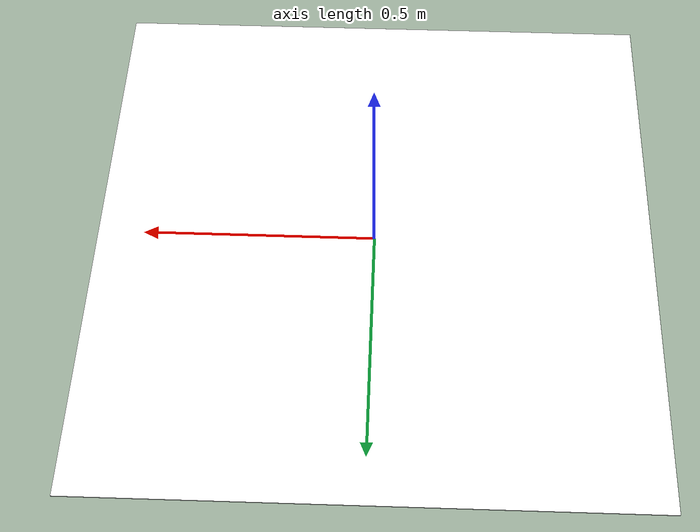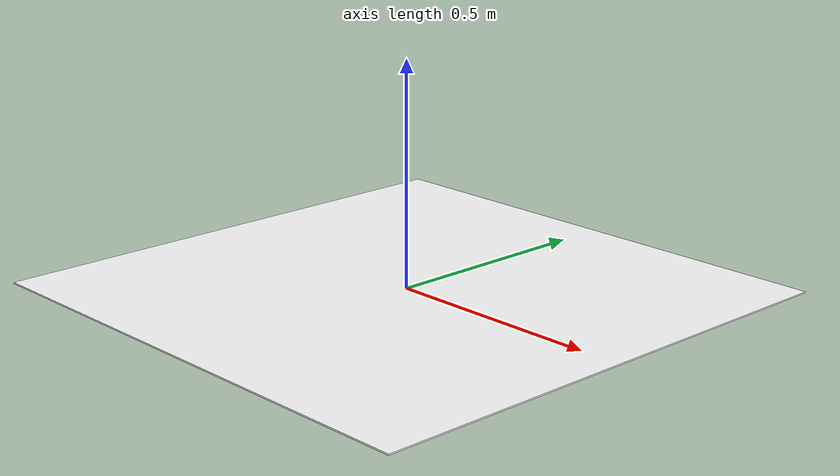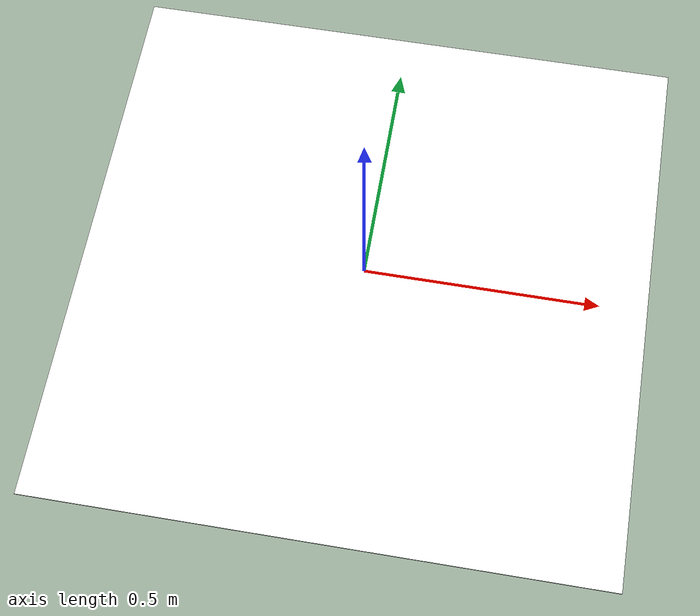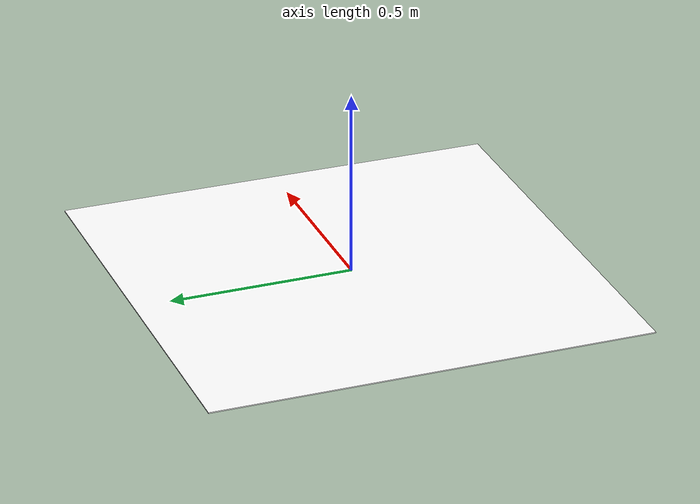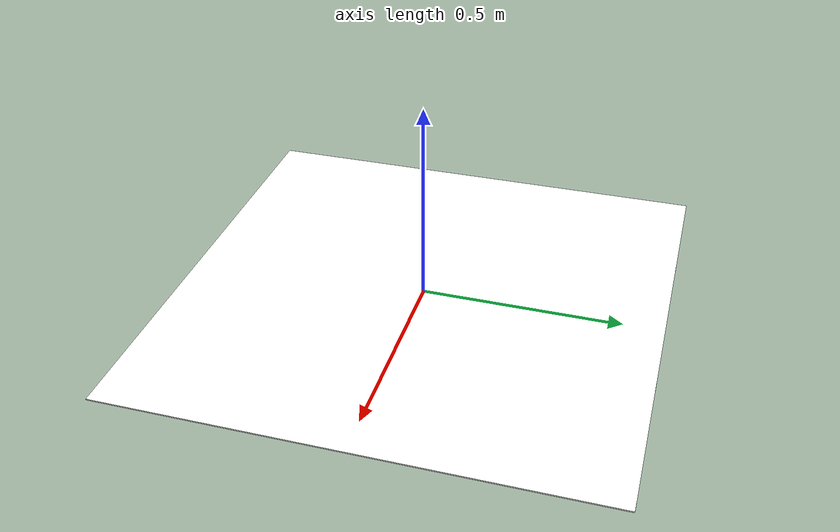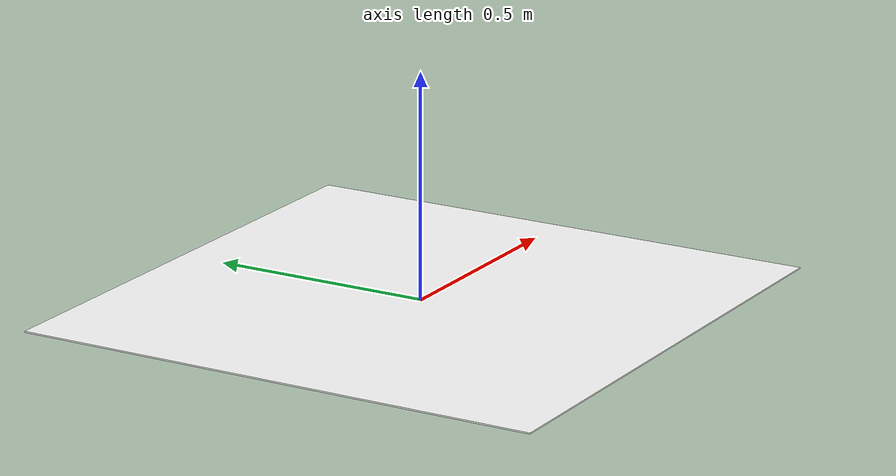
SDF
<?xml version="1.0"?>
<sdf version="1.9">
  <model name="gcp_large_3">
    <static>true</static>
    <link name="base">
      <!-- z = half thickness so bottom face sits exactly on the ground plane -->
      <pose>0 0 0.0015 0 0 0</pose>

      <collision name="collision">
        <geometry><box><size>1.2 1.2 0.003</size></box></geometry>
      </collision>

      <visual name="visual">
        <geometry><box><size>1.2 1.2 0.003</size></box></geometry>
        <material>
          <diffuse>1 1 1 1</diffuse>
          <specular>0.05 0.05 0.05 1</specular>
          <pbr><metal>
            <albedo_map>model://gcp_large_3/materials/textures/gcp_large_3.png</albedo_map>
            <metalness>0.0</metalness>
            <roughness>1.0</roughness>
          </metal></pbr>
        </material>
      </visual>
    </link>
  </model>
</sdf>
